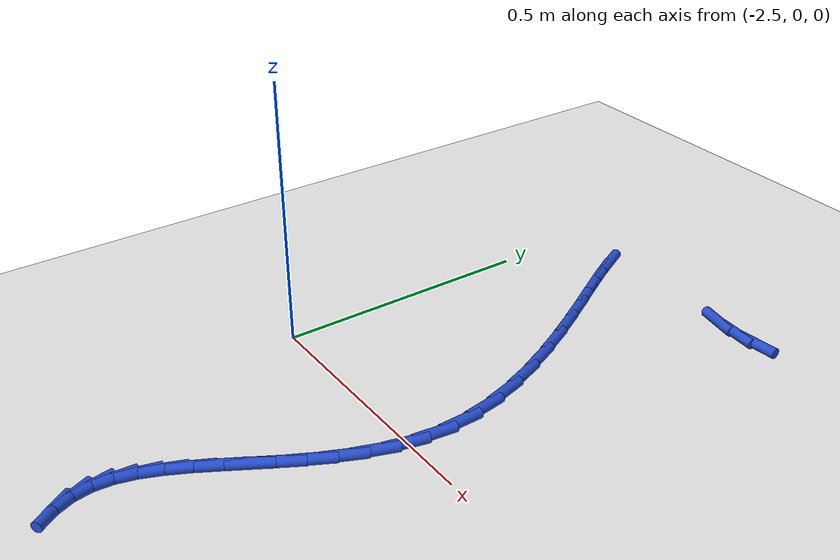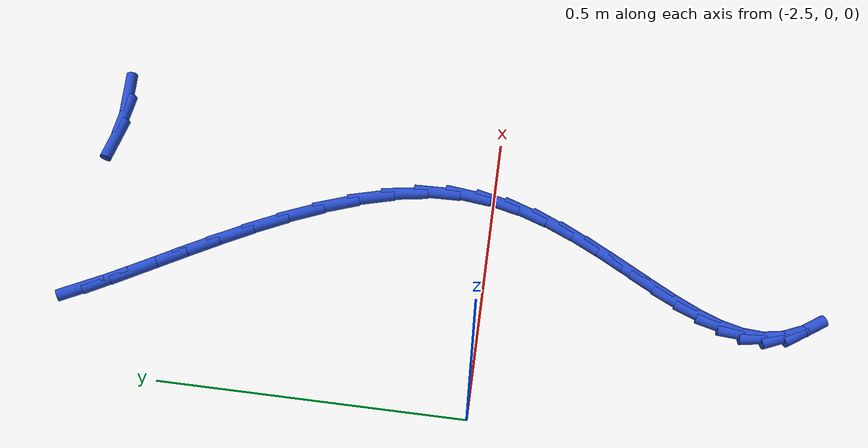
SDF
<sdf version="1.6">
 <world name="default">
  <model name="ground_plane">
   <static>1</static>
   <link name="link">
    <collision name="collision">
     <geometry><plane><normal>0 0 1</normal><size>100 100</size></plane></geometry>
     <surface><friction><ode><mu>100</mu><mu2>50</mu2></ode></friction></surface>
    </collision>
    <visual name="visual">
     <cast_shadows>0</cast_shadows>
     <geometry><plane><normal>0 0 1</normal><size>100 100</size></plane></geometry>
     <material>
      <script><uri>file://media/materials/scripts/gazebo.material</uri><name>Gazebo/WhiteGlow</name></script>
     </material>
    </visual>
   </link>
  </model>
  <model name="line">
   <link name="link_67">
    <pose>-1.9845731536030473 0.6716098714127785 0.01 0 1.57 0.08228906418897834</pose>
    <collision name="collision">
     <geometry><cylinder><radius>0.01</radius><length>0.08</length></cylinder></geometry>
    </collision>
    <visual name="visual">
     <material>
      <script><name>Gazebo/Blue</name><uri>file://media/materials/scripts/gazebo.material</uri></script>
     </material>
     <geometry><cylinder><radius>0.01</radius><length>0.08</length></cylinder></geometry>
    </visual>
   </link>
   <link name="link_68">
    <pose>-2.0294597837322983 0.6679078327441456 0.01 0 1.57 -0.08841369007323066</pose>
    <collision name="collision">
     <geometry><cylinder><radius>0.01</radius><length>0.08</length></cylinder></geometry>
    </collision>
    <visual name="visual">
     <material>
      <script><name>Gazebo/Blue</name><uri>file://media/materials/scripts/gazebo.material</uri></script>
     </material>
     <geometry><cylinder><radius>0.01</radius><length>0.08</length></cylinder></geometry>
    </visual>
   </link>
   <link name="link_69">
    <pose>-2.078645877693627 0.6722679236518389 0.01 0 1.57 -0.1954934567122599</pose>
    <collision name="collision">
     <geometry><cylinder><radius>0.01</radius><length>0.08</length></cylinder></geometry>
    </collision>
    <visual name="visual">
     <material>
      <script><name>Gazebo/Blue</name><uri>file://media/materials/scripts/gazebo.material</uri></script>
     </material>
     <geometry><cylinder><radius>0.01</radius><length>0.08</length></cylinder></geometry>
    </visual>
   </link>
   <link name="link_80">
    <pose>-2.3624037697264453 0.6570889277179441 0.01 0 1.57 -1.0929166057188233</pose>
    <collision name="collision">
     <geometry><cylinder><radius>0.01</radius><length>0.08</length></cylinder></geometry>
    </collision>
    <visual name="visual">
     <material>
      <script><name>Gazebo/Blue</name><uri>file://media/materials/scripts/gazebo.material</uri></script>
     </material>
     <geometry><cylinder><radius>0.01</radius><length>0.08</length></cylinder></geometry>
    </visual>
   </link>
   <link name="link_81">
    <pose>-2.343534504351676 0.6206560677185053 0.01 0 1.57 -1.0574799686577696</pose>
    <collision name="collision">
     <geometry><cylinder><radius>0.01</radius><length>0.08</length></cylinder></geometry>
    </collision>
    <visual name="visual">
     <material>
      <script><name>Gazebo/Blue</name><uri>file://media/materials/scripts/gazebo.material</uri></script>
     </material>
     <geometry><cylinder><radius>0.01</radius><length>0.08</length></cylinder></geometry>
    </visual>
   </link>
   <link name="link_82">
    <pose>-2.3202347610463314 0.5793240060793958 0.01 0 1.57 -1.0436037721691385</pose>
    <collision name="collision">
     <geometry><cylinder><radius>0.01</radius><length>0.08</length></cylinder></geometry>
    </collision>
    <visual name="visual">
     <material>
      <script><name>Gazebo/Blue</name><uri>file://media/materials/scripts/gazebo.material</uri></script>
     </material>
     <geometry><cylinder><radius>0.01</radius><length>0.08</length></cylinder></geometry>
    </visual>
   </link>
   <link name="link_83">
    <pose>-2.2937133335204867 0.5337664378938763 0.01 0 1.57 -1.0444376567523979</pose>
    <collision name="collision">
     <geometry><cylinder><radius>0.01</radius><length>0.08</length></cylinder></geometry>
    </collision>
    <visual name="visual">
     <material>
      <script><name>Gazebo/Blue</name><uri>file://media/materials/scripts/gazebo.material</uri></script>
     </material>
     <geometry><cylinder><radius>0.01</radius><length>0.08</length></cylinder></geometry>
    </visual>
   </link>
   <link name="link_84">
    <pose>-2.26517901548422 0.4846570582552102 0.01 0 1.57 -1.057013264763882</pose>
    <collision name="collision">
     <geometry><cylinder><radius>0.01</radius><length>0.08</length></cylinder></geometry>
    </collision>
    <visual name="visual">
     <material>
      <script><name>Gazebo/Blue</name><uri>file://media/materials/scripts/gazebo.material</uri></script>
     </material>
     <geometry><cylinder><radius>0.01</radius><length>0.08</length></cylinder></geometry>
    </visual>
   </link>
   <link name="link_85">
    <pose>-2.2358406006476073 0.43266956225665837 0.01 0 1.57 -1.0803885467425383</pose>
    <collision name="collision">
     <geometry><cylinder><radius>0.01</radius><length>0.08</length></cylinder></geometry>
    </collision>
    <visual name="visual">
     <material>
      <script><name>Gazebo/Blue</name><uri>file://media/materials/scripts/gazebo.material</uri></script>
     </material>
     <geometry><cylinder><radius>0.01</radius><length>0.08</length></cylinder></geometry>
    </visual>
   </link>
   <link name="link_86">
    <pose>-2.2069068827207263 0.37847764499148345 0.01 0 1.57 -1.1149472467884982</pose>
    <collision name="collision">
     <geometry><cylinder><radius>0.01</radius><length>0.08</length></cylinder></geometry>
    </collision>
    <visual name="visual">
     <material>
      <script><name>Gazebo/Blue</name><uri>file://media/materials/scripts/gazebo.material</uri></script>
     </material>
     <geometry><cylinder><radius>0.01</radius><length>0.08</length></cylinder></geometry>
    </visual>
   </link>
   <link name="link_87">
    <pose>-2.179586655413653 0.32275500155294695 0.01 0 1.57 -1.1621848866673345</pose>
    <collision name="collision">
     <geometry><cylinder><radius>0.01</radius><length>0.08</length></cylinder></geometry>
    </collision>
    <visual name="visual">
     <material>
      <script><name>Gazebo/Blue</name><uri>file://media/materials/scripts/gazebo.material</uri></script>
     </material>
     <geometry><cylinder><radius>0.01</radius><length>0.08</length></cylinder></geometry>
    </visual>
   </link>
   <link name="link_88">
    <pose>-2.1550887124364646 0.26617532703431024 0.01 0 1.57 -1.2247389434740201</pose>
    <collision name="collision">
     <geometry><cylinder><radius>0.01</radius><length>0.08</length></cylinder></geometry>
    </collision>
    <visual name="visual">
     <material>
      <script><name>Gazebo/Blue</name><uri>file://media/materials/scripts/gazebo.material</uri></script>
     </material>
     <geometry><cylinder><radius>0.01</radius><length>0.08</length></cylinder></geometry>
    </visual>
   </link>
   <link name="link_89">
    <pose>-2.1346218474992384 0.2094123165288363 0.01 0 1.57 -1.3065317409505903</pose>
    <collision name="collision">
     <geometry><cylinder><radius>0.01</radius><length>0.08</length></cylinder></geometry>
    </collision>
    <visual name="visual">
     <material>
      <script><name>Gazebo/Blue</name><uri>file://media/materials/scripts/gazebo.material</uri></script>
     </material>
     <geometry><cylinder><radius>0.01</radius><length>0.08</length></cylinder></geometry>
    </visual>
   </link>
   <link name="link_90">
    <pose>-2.119394854312051 0.1531396651297865 0.01 0 1.57 -1.4128320158770638</pose>
    <collision name="collision">
     <geometry><cylinder><radius>0.01</radius><length>0.08</length></cylinder></geometry>
    </collision>
    <visual name="visual">
     <material>
      <script><name>Gazebo/Blue</name><uri>file://media/materials/scripts/gazebo.material</uri></script>
     </material>
     <geometry><cylinder><radius>0.01</radius><length>0.08</length></cylinder></geometry>
    </visual>
   </link>
   <link name="link_91">
    <pose>-2.1106165265849794 0.09803106793042268 0.01 0 1.57 -1.5484290151793105</pose>
    <collision name="collision">
     <geometry><cylinder><radius>0.01</radius><length>0.08</length></cylinder></geometry>
    </collision>
    <visual name="visual">
     <material>
      <script><name>Gazebo/Blue</name><uri>file://media/materials/scripts/gazebo.material</uri></script>
     </material>
     <geometry><cylinder><radius>0.01</radius><length>0.08</length></cylinder></geometry>
    </visual>
   </link>
   <link name="link_92">
    <pose>-2.109424316249901 0.04473849842858475 0.01 0 1.57 1.4494835203941077</pose>
    <collision name="collision">
     <geometry><cylinder><radius>0.01</radius><length>0.08</length></cylinder></geometry>
    </collision>
    <visual name="visual">
     <material>
      <script><name>Gazebo/Blue</name><uri>file://media/materials/scripts/gazebo.material</uri></script>
     </material>
     <geometry><cylinder><radius>0.01</radius><length>0.08</length></cylinder></geometry>
    </visual>
   </link>
   <link name="link_93">
    <pose>-2.1156682019725976 -0.006478069826683673 0.01 0 1.57 1.3237625167590295</pose>
    <collision name="collision">
     <geometry><cylinder><radius>0.01</radius><length>0.08</length></cylinder></geometry>
    </collision>
    <visual name="visual">
     <material>
      <script><name>Gazebo/Blue</name><uri>file://media/materials/scripts/gazebo.material</uri></script>
     </material>
     <geometry><cylinder><radius>0.01</radius><length>0.08</length></cylinder></geometry>
    </visual>
   </link>
   <link name="link_94">
    <pose>-2.1280809257794284 -0.0556988308975726 0.01 0 1.57 1.2206960666400923</pose>
    <collision name="collision">
     <geometry><cylinder><radius>0.01</radius><length>0.08</length></cylinder></geometry>
    </collision>
    <visual name="visual">
     <material>
      <script><name>Gazebo/Blue</name><uri>file://media/materials/scripts/gazebo.material</uri></script>
     </material>
     <geometry><cylinder><radius>0.01</radius><length>0.08</length></cylinder></geometry>
    </visual>
   </link>
   <link name="link_95">
    <pose>-2.1453581500647187 -0.10301526856718528 0.01 0 1.57 1.1413687843627698</pose>
    <collision name="collision">
     <geometry><cylinder><radius>0.01</radius><length>0.08</length></cylinder></geometry>
    </collision>
    <visual name="visual">
     <material>
      <script><name>Gazebo/Blue</name><uri>file://media/materials/scripts/gazebo.material</uri></script>
     </material>
     <geometry><cylinder><radius>0.01</radius><length>0.08</length></cylinder></geometry>
    </visual>
   </link>
   <link name="link_96">
    <pose>-2.1661955372227935 -0.14851886661862504 0.01 0 1.57 1.0854258324869326</pose>
    <collision name="collision">
     <geometry><cylinder><radius>0.01</radius><length>0.08</length></cylinder></geometry>
    </collision>
    <visual name="visual">
     <material>
      <script><name>Gazebo/Blue</name><uri>file://media/materials/scripts/gazebo.material</uri></script>
     </material>
     <geometry><cylinder><radius>0.01</radius><length>0.08</length></cylinder></geometry>
    </visual>
   </link>
   <link name="link_97">
    <pose>-2.189288749647978 -0.1923011088349951 0.01 0 1.57 1.0524082534120534</pose>
    <collision name="collision">
     <geometry><cylinder><radius>0.01</radius><length>0.08</length></cylinder></geometry>
    </collision>
    <visual name="visual">
     <material>
      <script><name>Gazebo/Blue</name><uri>file://media/materials/scripts/gazebo.material</uri></script>
     </material>
     <geometry><cylinder><radius>0.01</radius><length>0.08</length></cylinder></geometry>
    </visual>
   </link>
   <link name="link_98">
    <pose>-2.2133334497345962 -0.23445347899939953 0.01 0 1.57 1.0427152519622107</pose>
    <collision name="collision">
     <geometry><cylinder><radius>0.01</radius><length>0.08</length></cylinder></geometry>
    </collision>
    <visual name="visual">
     <material>
      <script><name>Gazebo/Blue</name><uri>file://media/materials/scripts/gazebo.material</uri></script>
     </material>
     <geometry><cylinder><radius>0.01</radius><length>0.08</length></cylinder></geometry>
    </visual>
   </link>
   <link name="link_99">
    <pose>-2.237025299876973 -0.27506746089494005 0.01 0 1.57 1.0583451626000282</pose>
    <collision name="collision">
     <geometry><cylinder><radius>0.01</radius><length>0.08</length></cylinder></geometry>
    </collision>
    <visual name="visual">
     <material>
      <script><name>Gazebo/Blue</name><uri>file://media/materials/scripts/gazebo.material</uri></script>
     </material>
     <geometry><cylinder><radius>0.01</radius><length>0.08</length></cylinder></geometry>
    </visual>
   </link>
   <link name="link_100">
    <pose>-2.2590599624694354 -0.3142345383047207 0.01 0 1.57 1.10361514530101</pose>
    <collision name="collision">
     <geometry><cylinder><radius>0.01</radius><length>0.08</length></cylinder></geometry>
    </collision>
    <visual name="visual">
     <material>
      <script><name>Gazebo/Blue</name><uri>file://media/materials/scripts/gazebo.material</uri></script>
     </material>
     <geometry><cylinder><radius>0.01</radius><length>0.08</length></cylinder></geometry>
    </visual>
   </link>
   <link name="link_101">
    <pose>-2.278133099906306 -0.35204619501184475 0.01 0 1.57 1.1858589927951413</pose>
    <collision name="collision">
     <geometry><cylinder><radius>0.01</radius><length>0.08</length></cylinder></geometry>
    </collision>
    <visual name="visual">
     <material>
      <script><name>Gazebo/Blue</name><uri>file://media/materials/scripts/gazebo.material</uri></script>
     </material>
     <geometry><cylinder><radius>0.01</radius><length>0.08</length></cylinder></geometry>
    </visual>
   </link>
   <link name="link_102">
    <pose>-2.2929403745819106 -0.38859391479941563 0.01 0 1.57 1.3153825244477368</pose>
    <collision name="collision">
     <geometry><cylinder><radius>0.01</radius><length>0.08</length></cylinder></geometry>
    </collision>
    <visual name="visual">
     <material>
      <script><name>Gazebo/Blue</name><uri>file://media/materials/scripts/gazebo.material</uri></script>
     </material>
     <geometry><cylinder><radius>0.01</radius><length>0.08</length></cylinder></geometry>
    </visual>
   </link>
   <link name="link_103">
    <pose>-2.302177448890575 -0.4239691814505371 0.01 0 1.57 1.5020149339382116</pose>
    <collision name="collision">
     <geometry><cylinder><radius>0.01</radius><length>0.08</length></cylinder></geometry>
    </collision>
    <visual name="visual">
     <material>
      <script><name>Gazebo/Blue</name><uri>file://media/materials/scripts/gazebo.material</uri></script>
     </material>
     <geometry><cylinder><radius>0.01</radius><length>0.08</length></cylinder></geometry>
    </visual>
   </link>
   <link name="link_104">
    <pose>-2.304539985226622 -0.4582634787483111 0.01 0 1.57 -1.399379647226689</pose>
    <collision name="collision">
     <geometry><cylinder><radius>0.01</radius><length>0.08</length></cylinder></geometry>
    </collision>
    <visual name="visual">
     <material>
      <script><name>Gazebo/Blue</name><uri>file://media/materials/scripts/gazebo.material</uri></script>
     </material>
     <geometry><cylinder><radius>0.01</radius><length>0.08</length></cylinder></geometry>
    </visual>
   </link>
   <link name="link_105">
    <pose>-2.298774904043943 -0.491565394548291 0.01 0 1.57 -1.16098108131681</pose>
    <collision name="collision">
     <geometry><cylinder><radius>0.01</radius><length>0.08</length></cylinder></geometry>
    </collision>
    <visual name="visual">
     <material>
      <script><name>Gazebo/Blue</name><uri>file://media/materials/scripts/gazebo.material</uri></script>
     </material>
     <geometry><cylinder><radius>0.01</radius><length>0.08</length></cylinder></geometry>
    </visual>
   </link>
   <link name="link_106">
    <pose>-2.2847277484873114 -0.5239014477993001 0.01 0 1.57 -0.9710338415870012</pose>
    <collision name="collision">
     <geometry><cylinder><radius>0.01</radius><length>0.08</length></cylinder></geometry>
    </collision>
    <visual name="visual">
     <material>
      <script><name>Gazebo/Blue</name><uri>file://media/materials/scripts/gazebo.material</uri></script>
     </material>
     <geometry><cylinder><radius>0.01</radius><length>0.08</length></cylinder></geometry>
    </visual>
   </link>
  </model>
 </world>
</sdf>
